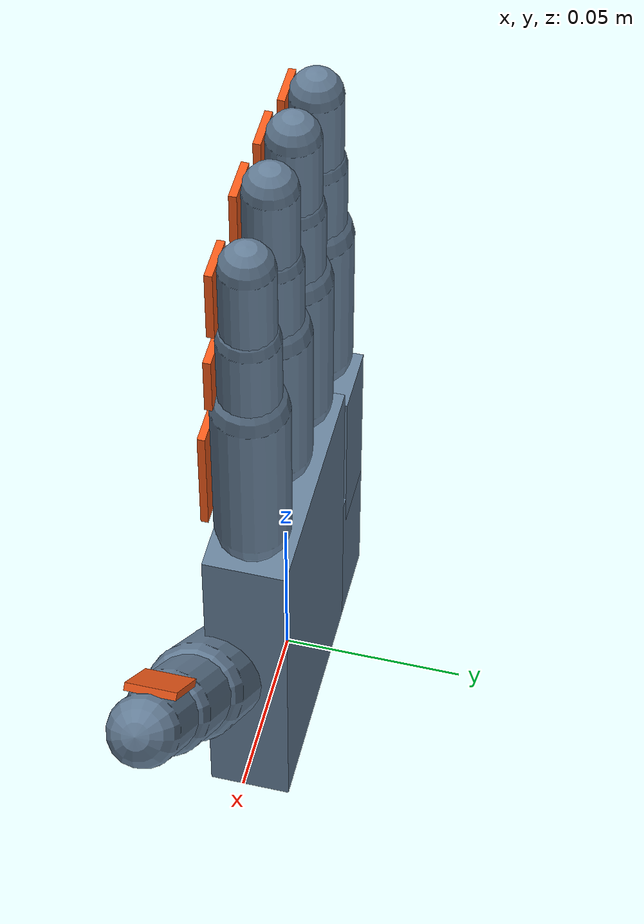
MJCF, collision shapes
<?xml version="1.0" encoding="utf-8"?>
<mujoco>
    <compiler angle="radian" coordinate="local" meshdir="../stls/hand" texturedir="../textures"></compiler>
    <option timestep="0.002" iterations="20" apirate="200">
        <flag warmstart="enable"></flag>
    </option>

    <include file="shared.xml"></include>

    <asset>
        <include file="shared_asset.xml"></include>
    </asset>

    <worldbody>
        <include file="robot_tactile.xml"></include>

        <light directional="true" ambient="0.2 0.2 0.2" diffuse="0.8 0.8 0.8" specular="0.3 0.3 0.3" castshadow="false" pos="0 1 4" dir="0 0 -1" name="light0"></light>
    </worldbody>
</mujoco>

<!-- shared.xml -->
<!-- See LICENSE.md for legal notices. LICENSE.md must be kept together with this file. -->
<mujoco>
    <size njmax="500" nconmax="100" nuser_jnt="1" nuser_site="1" nuser_tendon="1" nuser_sensor="1" nuser_actuator="16" nstack="600000"></size>

    <visual>
        <map fogstart="3" fogend="5" force="0.1"></map>
        <quality shadowsize="4096"></quality>
    </visual>

    <default>
        <default class="robot0:asset_class">
            <geom friction="1 0.005 0.001" condim="3" margin="0.0005" contype="1" conaffinity="1"></geom>
            <joint limited="true" damping="0.1" armature="0.001" margin="0.01" frictionloss="0.001"></joint>
            <site size="0.005" rgba="0.4 0.9 0.4 1"></site>
            <general ctrllimited="true" forcelimited="true"></general>
        </default>
        <default class="robot0:D_Touch">
            <site type="box" size="0.009 0.004 0.013" pos="0 -0.004 0.018" rgba="0.8 0.8 0.8 0.15" group="4"></site>
        </default>
        <default class="robot0:DC_Hand">
            <geom material="robot0:MatColl" contype="1" conaffinity="0" group="4"></geom>
        </default>
        <default class="robot0:D_TactilePad">
            <geom type="box" material="robot0:MatColl" friction="1 0.005 0.001" condim="4" margin="0.0002" contype="1" conaffinity="0" group="4" rgba="0.95 0.35 0.10 1"></geom>
        </default>
        <default class="robot0:D_Vizual">
            <geom material="robot0:MatViz" contype="0" conaffinity="0" group="1" type="mesh"></geom>
        </default>
        <default class="robot0:free">
            <joint type="free" damping="0" armature="0" limited="false"></joint>
        </default>
    </default>

    <contact>
        <pair geom1="robot0:C_ffdistal" geom2="robot0:C_thdistal" condim="1"></pair>
        <pair geom1="robot0:C_ffmiddle" geom2="robot0:C_thdistal" condim="1"></pair>
        <pair geom1="robot0:C_ffproximal" geom2="robot0:C_thdistal" condim="1"></pair>
        <pair geom1="robot0:C_mfproximal" geom2="robot0:C_thdistal" condim="1"></pair>
        <pair geom1="robot0:C_mfdistal" geom2="robot0:C_thdistal" condim="1"></pair>
        <pair geom1="robot0:C_rfdistal" geom2="robot0:C_thdistal" condim="1"></pair>
        <pair geom1="robot0:C_lfdistal" geom2="robot0:C_thdistal" condim="1"></pair>
        <pair geom1="robot0:C_palm0" geom2="robot0:C_thdistal" condim="1"></pair>
        <pair geom1="robot0:C_mfdistal" geom2="robot0:C_ffdistal" condim="1"></pair>
        <pair geom1="robot0:C_rfdistal" geom2="robot0:C_mfdistal" condim="1"></pair>
        <pair geom1="robot0:C_lfdistal" geom2="robot0:C_rfdistal" condim="1"></pair>
        <pair geom1="robot0:C_mfproximal" geom2="robot0:C_ffproximal" condim="1"></pair>
        <pair geom1="robot0:C_rfproximal" geom2="robot0:C_mfproximal" condim="1"></pair>
        <pair geom1="robot0:C_lfproximal" geom2="robot0:C_rfproximal" condim="1"></pair>
        <pair geom1="robot0:C_lfdistal" geom2="robot0:C_rfdistal" condim="1"></pair>
        <pair geom1="robot0:C_lfdistal" geom2="robot0:C_mfdistal" condim="1"></pair>
        <pair geom1="robot0:C_lfdistal" geom2="robot0:C_rfmiddle" condim="1"></pair>
        <pair geom1="robot0:C_lfmiddle" geom2="robot0:C_rfdistal" condim="1"></pair>
        <pair geom1="robot0:C_lfmiddle" geom2="robot0:C_rfmiddle" condim="1"></pair>
    </contact>

    <tendon>
        <fixed name="robot0:T_FFJ1c" limited="true" range="-0.001 0.001">
            <joint joint="robot0:FFJ0" coef="0.00705"></joint>
            <joint joint="robot0:FFJ1" coef="-0.00805"></joint>
        </fixed>
        <fixed name="robot0:T_MFJ1c" limited="true" range="-0.001 0.001">
            <joint joint="robot0:MFJ0" coef="0.00705"></joint>
            <joint joint="robot0:MFJ1" coef="-0.00805"></joint>
        </fixed>
        <fixed name="robot0:T_RFJ1c" limited="true" range="-0.001 0.001">
            <joint joint="robot0:RFJ0" coef="0.00705"></joint>
            <joint joint="robot0:RFJ1" coef="-0.00805"></joint>
        </fixed>
        <fixed name="robot0:T_LFJ1c" limited="true" range="-0.001 0.001">
            <joint joint="robot0:LFJ0" coef="0.00705"></joint>
            <joint joint="robot0:LFJ1" coef="-0.00805"></joint>
        </fixed>

    </tendon>

    <sensor>
        <jointpos name="robot0:Sjp_FFJ3" joint="robot0:FFJ3"></jointpos>
        <jointpos name="robot0:Sjp_FFJ2" joint="robot0:FFJ2"></jointpos>
        <jointpos name="robot0:Sjp_FFJ1" joint="robot0:FFJ1"></jointpos>
        <jointpos name="robot0:Sjp_FFJ0" joint="robot0:FFJ0"></jointpos>
        <jointpos name="robot0:Sjp_MFJ3" joint="robot0:MFJ3"></jointpos>
        <jointpos name="robot0:Sjp_MFJ2" joint="robot0:MFJ2"></jointpos>
        <jointpos name="robot0:Sjp_MFJ1" joint="robot0:MFJ1"></jointpos>
        <jointpos name="robot0:Sjp_MFJ0" joint="robot0:MFJ0"></jointpos>
        <jointpos name="robot0:Sjp_RFJ3" joint="robot0:RFJ3"></jointpos>
        <jointpos name="robot0:Sjp_RFJ2" joint="robot0:RFJ2"></jointpos>
        <jointpos name="robot0:Sjp_RFJ1" joint="robot0:RFJ1"></jointpos>
        <jointpos name="robot0:Sjp_RFJ0" joint="robot0:RFJ0"></jointpos>
        <jointpos name="robot0:Sjp_LFJ4" joint="robot0:LFJ4"></jointpos>
        <jointpos name="robot0:Sjp_LFJ3" joint="robot0:LFJ3"></jointpos>
        <jointpos name="robot0:Sjp_LFJ2" joint="robot0:LFJ2"></jointpos>
        <jointpos name="robot0:Sjp_LFJ1" joint="robot0:LFJ1"></jointpos>
        <jointpos name="robot0:Sjp_LFJ0" joint="robot0:LFJ0"></jointpos>
        <jointpos name="robot0:Sjp_THJ4" joint="robot0:THJ4"></jointpos>
        <jointpos name="robot0:Sjp_THJ3" joint="robot0:THJ3"></jointpos>
        <jointpos name="robot0:Sjp_THJ2" joint="robot0:THJ2"></jointpos>
        <jointpos name="robot0:Sjp_THJ1" joint="robot0:THJ1"></jointpos>
        <jointpos name="robot0:Sjp_THJ0" joint="robot0:THJ0"></jointpos>
        <touch name="robot0:ST_Tch_fftip" site="robot0:Tch_fftip"></touch>
        <touch name="robot0:ST_Tch_mftip" site="robot0:Tch_mftip"></touch>
        <touch name="robot0:ST_Tch_rftip" site="robot0:Tch_rftip"></touch>
        <touch name="robot0:ST_Tch_lftip" site="robot0:Tch_lftip"></touch>
        <touch name="robot0:ST_Tch_thtip" site="robot0:Tch_thtip"></touch>
    </sensor>

    <actuator>
        <position name="robot0:A_FFJ3" class="robot0:asset_class" user="2004" joint="robot0:FFJ3" ctrlrange="-0.349 0.349" kp="1" forcerange="-0.9 0.9"></position>
        <position name="robot0:A_FFJ2" class="robot0:asset_class" user="2002" joint="robot0:FFJ2" ctrlrange="0 1.571" kp="1" forcerange="-0.9 0.9"></position>
        <position name="robot0:A_FFJ1" class="robot0:asset_class" user="2000" joint="robot0:FFJ1" ctrlrange="0 1.571" kp="1" forcerange="-0.7245 0.7245"></position>
        <position name="robot0:A_MFJ3" class="robot0:asset_class" user="2010" joint="robot0:MFJ3" ctrlrange="-0.349 0.349" kp="1" forcerange="-0.9 0.9"></position>
        <position name="robot0:A_MFJ2" class="robot0:asset_class" user="2008" joint="robot0:MFJ2" ctrlrange="0 1.571" kp="1" forcerange="-0.9 0.9"></position>
        <position name="robot0:A_MFJ1" class="robot0:asset_class" user="2006" joint="robot0:MFJ1" ctrlrange="0 1.571" kp="1" forcerange="-0.7245 0.7245"></position>
        <position name="robot0:A_RFJ3" class="robot0:asset_class" user="2016" joint="robot0:RFJ3" ctrlrange="-0.349 0.349" kp="1" forcerange="-0.9 0.9"></position>
        <position name="robot0:A_RFJ2" class="robot0:asset_class" user="2014" joint="robot0:RFJ2" ctrlrange="0 1.571" kp="1" forcerange="-0.9 0.9"></position>
        <position name="robot0:A_RFJ1" class="robot0:asset_class" user="2012" joint="robot0:RFJ1" ctrlrange="0 1.571" kp="1" forcerange="-0.7245 0.7245"></position>
        <position name="robot0:A_LFJ4" class="robot0:asset_class" user="2024" joint="robot0:LFJ4" ctrlrange="0 0.785" kp="1" forcerange="-0.9 0.9"></position>
        <position name="robot0:A_LFJ3" class="robot0:asset_class" user="2022" joint="robot0:LFJ3" ctrlrange="-0.349 0.349" kp="1" forcerange="-0.9 0.9"></position>
        <position name="robot0:A_LFJ2" class="robot0:asset_class" user="2020" joint="robot0:LFJ2" ctrlrange="0 1.571" kp="1" forcerange="-0.9 0.9"></position>
        <position name="robot0:A_LFJ1" class="robot0:asset_class" user="2018" joint="robot0:LFJ1" ctrlrange="0 1.571" kp="1" forcerange="-0.7245 0.7245"></position>
        <position name="robot0:A_THJ4" class="robot0:asset_class" user="2034" joint="robot0:THJ4" ctrlrange="-1.047 1.047" kp="1" forcerange="-2.3722 2.3722"></position>
        <position name="robot0:A_THJ3" class="robot0:asset_class" user="2032" joint="robot0:THJ3" ctrlrange="0 1.222" kp="1" forcerange="-1.45 1.45"></position>
        <position name="robot0:A_THJ2" class="robot0:asset_class" user="2030" joint="robot0:THJ2" ctrlrange="-0.209 0.209" kp="1" forcerange="-0.99 0.99"></position>
        <position name="robot0:A_THJ1" class="robot0:asset_class" user="2028" joint="robot0:THJ1" ctrlrange="-0.524 0.524" kp="1" forcerange="-0.99 0.99"></position>
        <position name="robot0:A_THJ0" class="robot0:asset_class" user="2026" joint="robot0:THJ0" ctrlrange="-1.571 0" kp="1" forcerange="-0.81 0.81"></position>
    </actuator>
</mujoco>

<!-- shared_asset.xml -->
<!-- See LICENSE.md for legal notices. LICENSE.md must be kept together with this file. -->
<mujoco>
    <texture type="skybox" builtin="gradient" rgb1="0.44 0.85 0.56" rgb2="0.46 0.87 0.58" width="32" height="32"></texture>

    <texture name="robot0:texplane" type="2d" builtin="checker" rgb1="0.2 0.3 0.4" rgb2="0.1 0.15 0.2" width="512" height="512"></texture>
    <texture name="robot0:texgeom" type="cube" builtin="flat" mark="cross" width="127" height="127" rgb1="0.3 0.6 0.5" rgb2="0.3 0.6 0.5" markrgb="0 0 0" random="0.01"></texture>

    <material name="robot0:MatGnd" reflectance="0.5" texture="robot0:texplane" texrepeat="1 1" texuniform="true"></material>
    <material name="robot0:MatColl" specular="1" shininess="0.3" reflectance="0.5" rgba="0.4 0.5 0.6 1"></material>
    <material name="robot0:MatViz" specular="0.75" shininess="0.1" reflectance="0.5" rgba="0.93 0.93 0.93 1"></material>
    <material name="robot0:object" texture="robot0:texgeom" texuniform="false"></material>
    <material name="floor_mat" specular="0" shininess="0.5" reflectance="0" rgba="0.2 0.2 0.2 0"></material>

    <mesh name="robot0:forearm" file="forearm_electric.stl"></mesh>
    <mesh name="robot0:forearm_cvx" file="forearm_electric_cvx.stl"></mesh>
    <mesh name="robot0:wrist" scale="0.001 0.001 0.001" file="wrist.stl"></mesh>
    <mesh name="robot0:palm" scale="0.001 0.001 0.001" file="palm.stl"></mesh>
    <mesh name="robot0:knuckle" scale="0.001 0.001 0.001" file="knuckle.stl"></mesh>
    <mesh name="robot0:F3" scale="0.001 0.001 0.001" file="F3.stl"></mesh>
    <mesh name="robot0:F2" scale="0.001 0.001 0.001" file="F2.stl"></mesh>
    <mesh name="robot0:F1" scale="0.001 0.001 0.001" file="F1.stl"></mesh>
    <mesh name="robot0:lfmetacarpal" scale="0.001 0.001 0.001" file="lfmetacarpal.stl"></mesh>
    <mesh name="robot0:TH3_z" scale="0.001 0.001 0.001" file="TH3_z.stl"></mesh>
    <mesh name="robot0:TH2_z" scale="0.001 0.001 0.001" file="TH2_z.stl"></mesh>
    <mesh name="robot0:TH1_z" scale="0.001 0.001 0.001" file="TH1_z.stl"></mesh>
</mujoco>

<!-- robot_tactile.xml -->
<!-- See LICENSE.md for legal notices. LICENSE.md must be kept together with this file. -->
<mujoco>
    <body name="robot0:hand mount" pos="0 0 0" euler="0 0 0">
        <inertial mass="0.1" pos="0 0 0" diaginertia="0.001 0.001 0.001"></inertial>
        <body childclass="robot0:asset_class" name="robot0:palm" pos="0 0 0" euler="0 0 0">
            <inertial pos="0.006 0 0.036" quat="0.716 0.044 0.075 0.693" mass="4" diaginertia="0.01 0.01 0.0075"></inertial>
            <geom class="robot0:D_Vizual" name="robot0:V_palm" mesh="robot0:palm"></geom>
            <geom class="robot0:DC_Hand" name="robot0:C_palm0" type="box" pos="0.011 0 0.038" size="0.032 0.0111 0.049" rgba="0.4 0.5 0.6 0.1"></geom>
            <geom class="robot0:DC_Hand" name="robot0:C_palm1" type="box" pos="-0.032 0 0.014" size="0.011 0.0111 0.025" rgba="0.4 0.5 0.6 0.1"></geom>
            <!-- Pad centres overlap parent surfaces by 0.5 mm and protrude 1.5 mm. -->
            <body name="robot0:palm_sensor" pos="0.008 -0.0116 0.045">
                <inertial mass="0.001" pos="0 0 0" diaginertia="1e-7 1e-7 1e-7"></inertial>
                <geom class="robot0:D_TactilePad" name="robot0:C_palm_sensor" size="0.022 0.001 0.030"></geom>
            </body>
            <body name="robot0:ffknuckle" pos="0.033 0 0.095">
                <inertial pos="0 0 0" quat="0.52 0.854 0.006 -0.003" mass="0.008" diaginertia="1e-05 1e-05 1e-05"></inertial>
                <joint name="robot0:FFJ3" type="hinge" pos="0 0 0" axis="0 1 0" range="-0.349 0.349" user="1103"></joint>
                <geom class="robot0:D_Vizual" name="robot0:V_ffknuckle" mesh="robot0:knuckle"></geom>
                <body name="robot0:ffproximal" pos="0 0 0">
                    <inertial pos="0 0 0.023" quat="0.707 -0.004 0.004 0.707" mass="0.014" diaginertia="1e-05 1e-05 1e-05"></inertial>
                    <joint name="robot0:FFJ2" type="hinge" pos="0 0 0" axis="1 0 0" range="0 1.571" user="1102"></joint>
                    <geom class="robot0:D_Vizual" name="robot0:V_ffproximal" mesh="robot0:F3"></geom>
                    <geom class="robot0:DC_Hand" name="robot0:C_ffproximal" type="capsule" pos="0 0 0.0225" size="0.01 0.0225"></geom>
                    <body name="robot0:ffproximal_sensor" pos="0 -0.0105 0.0225">
                        <inertial mass="0.001" pos="0 0 0" diaginertia="1e-7 1e-7 1e-7"></inertial>
                        <geom class="robot0:D_TactilePad" name="robot0:C_ffproximal_sensor" size="0.0075 0.001 0.016"></geom>
                    </body>
                    <body name="robot0:ffmiddle" pos="0 0 0.045">
                        <inertial pos="0 0 0.011" quat="0.707 0 0 0.707" mass="0.012" diaginertia="1e-05 1e-05 1e-05"></inertial>
                        <joint name="robot0:FFJ1" type="hinge" pos="0 0 0" axis="1 0 0" range="0 1.571" user="1101"></joint>
                        <geom class="robot0:D_Vizual" name="robot0:V_ffmiddle" mesh="robot0:F2"></geom>
                        <geom class="robot0:DC_Hand" name="robot0:C_ffmiddle" type="capsule" pos="0 0 0.0125" size="0.00805 0.0125"></geom>
                        <body name="robot0:ffmiddle_sensor" pos="0 -0.00855 0.0125">
                            <inertial mass="0.001" pos="0 0 0" diaginertia="1e-7 1e-7 1e-7"></inertial>
                            <geom class="robot0:D_TactilePad" name="robot0:C_ffmiddle_sensor" size="0.0065 0.001 0.0085"></geom>
                        </body>
                        <body name="robot0:ffdistal" pos="0 0 0.025">
                            <inertial pos="0 0 0.015" quat="0.707 -0.003 0.003 0.707" mass="0.01" diaginertia="1e-05 1e-05 1e-05"></inertial>
                            <joint name="robot0:FFJ0" type="hinge" pos="0 0 0" axis="1 0 0" range="0 1.571" user="1100"></joint>
                            <geom class="robot0:D_Vizual" name="robot0:V_ffdistal" pos="0 0 0.001" mesh="robot0:F1"></geom>
                            <geom class="robot0:DC_Hand" name="robot0:C_ffdistal" type="capsule" pos="0 0 0.012" size="0.00705 0.012" condim="4"></geom>
                            <site name="robot0:S_fftip" pos="0 0 0.026" group="3"></site>
                            <site class="robot0:D_Touch" name="robot0:Tch_fftip"></site>
                            <body name="robot0:ffdistal_sensor" pos="0 -0.00755 0.015">
                                <inertial mass="0.001" pos="0 0 0" diaginertia="1e-7 1e-7 1e-7"></inertial>
                                <geom class="robot0:D_TactilePad" name="robot0:C_ffdistal_sensor" size="0.0058 0.001 0.0105"></geom>
                            </body>
                        </body>
                    </body>
                </body>
            </body>
            <body name="robot0:mfknuckle" pos="0.011 0 0.099">
                <inertial pos="0 0 0" quat="0.52 0.854 0.006 -0.003" mass="0.008" diaginertia="1e-05 1e-05 1e-05"></inertial>
                <joint name="robot0:MFJ3" type="hinge" pos="0 0 0" axis="0 1 0" range="-0.349 0.349" user="1107"></joint>
                <geom class="robot0:D_Vizual" name="robot0:V_mfknuckle" mesh="robot0:knuckle"></geom>
                <body name="robot0:mfproximal" pos="0 0 0">
                    <inertial pos="0 0 0.023" quat="0.707 -0.004 0.004 0.707" mass="0.014" diaginertia="1e-05 1e-05 1e-05"></inertial>
                    <joint name="robot0:MFJ2" type="hinge" pos="0 0 0" axis="1 0 0" range="0 1.571" user="1106"></joint>
                    <geom class="robot0:D_Vizual" name="robot0:V_mfproximal" mesh="robot0:F3"></geom>
                    <geom class="robot0:DC_Hand" name="robot0:C_mfproximal" type="capsule" pos="0 0 0.0225" size="0.01 0.0225"></geom>
                    <body name="robot0:mfproximal_sensor" pos="0 -0.0105 0.0225">
                        <inertial mass="0.001" pos="0 0 0" diaginertia="1e-7 1e-7 1e-7"></inertial>
                        <geom class="robot0:D_TactilePad" name="robot0:C_mfproximal_sensor" size="0.0075 0.001 0.016"></geom>
                    </body>
                    <body name="robot0:mfmiddle" pos="0 0 0.045">
                        <inertial pos="0 0 0.012" quat="0.707 0 0 0.707" mass="0.012" diaginertia="1e-05 1e-05 1e-05"></inertial>
                        <joint name="robot0:MFJ1" type="hinge" pos="0 0 0" axis="1 0 0" range="0 1.571" user="1105"></joint>
                        <geom class="robot0:D_Vizual" name="robot0:V_mfmiddle" mesh="robot0:F2"></geom>
                        <geom class="robot0:DC_Hand" name="robot0:C_mfmiddle" type="capsule" pos="0 0 0.0125" size="0.00805 0.0125"></geom>
                        <body name="robot0:mfmiddle_sensor" pos="0 -0.00855 0.0125">
                            <inertial mass="0.001" pos="0 0 0" diaginertia="1e-7 1e-7 1e-7"></inertial>
                            <geom class="robot0:D_TactilePad" name="robot0:C_mfmiddle_sensor" size="0.0065 0.001 0.0085"></geom>
                        </body>
                        <body name="robot0:mfdistal" pos="0 0 0.025">
                            <inertial pos="0 0 0.015" quat="0.707 -0.003 0.003 0.707" mass="0.01" diaginertia="1e-05 1e-05 1e-05"></inertial>
                            <joint name="robot0:MFJ0" type="hinge" pos="0 0 0" axis="1 0 0" range="0 1.571" user="1104"></joint>
                            <geom class="robot0:D_Vizual" name="robot0:V_mfdistal" mesh="robot0:F1"></geom>
                            <geom class="robot0:DC_Hand" name="robot0:C_mfdistal" type="capsule" pos="0 0 0.012" size="0.00705 0.012" condim="4"></geom>
                            <site name="robot0:S_mftip" pos="0 0 0.026" group="3"></site>
                            <site class="robot0:D_Touch" name="robot0:Tch_mftip"></site>
                            <body name="robot0:mfdistal_sensor" pos="0 -0.00755 0.015">
                                <inertial mass="0.001" pos="0 0 0" diaginertia="1e-7 1e-7 1e-7"></inertial>
                                <geom class="robot0:D_TactilePad" name="robot0:C_mfdistal_sensor" size="0.0058 0.001 0.0105"></geom>
                            </body>
                        </body>
                    </body>
                </body>
            </body>
            <body name="robot0:rfknuckle" pos="-0.011 0 0.095">
                <inertial pos="0 0 0" quat="0.52 0.854 0.006 -0.003" mass="0.008" diaginertia="1e-05 1e-05 1e-05"></inertial>
                <joint name="robot0:RFJ3" type="hinge" pos="0 0 0" axis="0 1 0" range="-0.349 0.349" user="1111"></joint>
                <geom class="robot0:D_Vizual" name="robot0:V_rfknuckle" mesh="robot0:knuckle"></geom>
                <body name="robot0:rfproximal" pos="0 0 0">
                    <inertial pos="0 0 0.023" quat="0.707 -0.004 0.004 0.707" mass="0.014" diaginertia="1e-05 1e-05 1e-05"></inertial>
                    <joint name="robot0:RFJ2" type="hinge" pos="0 0 0" axis="1 0 0" range="0 1.571" user="1110"></joint>
                    <geom class="robot0:D_Vizual" name="robot0:V_rfproximal" mesh="robot0:F3"></geom>
                    <geom class="robot0:DC_Hand" name="robot0:C_rfproximal" type="capsule" pos="0 0 0.0225" size="0.01 0.0225"></geom>
                    <body name="robot0:rfproximal_sensor" pos="0 -0.0105 0.0225">
                        <inertial mass="0.001" pos="0 0 0" diaginertia="1e-7 1e-7 1e-7"></inertial>
                        <geom class="robot0:D_TactilePad" name="robot0:C_rfproximal_sensor" size="0.0075 0.001 0.016"></geom>
                    </body>
                    <body name="robot0:rfmiddle" pos="0 0 0.045">
                        <inertial pos="0 0 0.012" quat="0.707 0 0 0.707" mass="0.012" diaginertia="1e-05 1e-05 1e-05"></inertial>
                        <joint name="robot0:RFJ1" type="hinge" pos="0 0 0" axis="1 0 0" range="0 1.571" user="1109"></joint>
                        <geom class="robot0:D_Vizual" name="robot0:V_rfmiddle" mesh="robot0:F2"></geom>
                        <geom class="robot0:DC_Hand" name="robot0:C_rfmiddle" type="capsule" pos="0 0 0.0125" size="0.00805 0.0125"></geom>
                        <body name="robot0:rfmiddle_sensor" pos="0 -0.00855 0.0125">
                            <inertial mass="0.001" pos="0 0 0" diaginertia="1e-7 1e-7 1e-7"></inertial>
                            <geom class="robot0:D_TactilePad" name="robot0:C_rfmiddle_sensor" size="0.0065 0.001 0.0085"></geom>
                        </body>
                        <body name="robot0:rfdistal" pos="0 0 0.025">
                            <inertial pos="0 0 0.015" quat="0.707 -0.003 0.003 0.707" mass="0.01" diaginertia="1e-05 1e-05 1e-05"></inertial>
                            <joint name="robot0:RFJ0" type="hinge" pos="0 0 0" axis="1 0 0" range="0 1.571" user="1108"></joint>
                            <geom class="robot0:D_Vizual" name="robot0:V_rfdistal" mesh="robot0:F1" pos="0 0 0.001"></geom>
                            <geom class="robot0:DC_Hand" name="robot0:C_rfdistal" type="capsule" pos="0 0 0.012" size="0.00705 0.012" condim="4"></geom>
                            <site name="robot0:S_rftip" pos="0 0 0.026" group="3"></site>
                            <site class="robot0:D_Touch" name="robot0:Tch_rftip"></site>
                            <body name="robot0:rfdistal_sensor" pos="0 -0.00755 0.015">
                                <inertial mass="0.001" pos="0 0 0" diaginertia="1e-7 1e-7 1e-7"></inertial>
                                <geom class="robot0:D_TactilePad" name="robot0:C_rfdistal_sensor" size="0.0058 0.001 0.0105"></geom>
                            </body>
                        </body>
                    </body>
                </body>
            </body>
            <body name="robot0:lfmetacarpal" pos="-0.017 0 0.044">
                <inertial pos="-0.014 0.001 0.014" quat="0.709 -0.092 -0.063 0.696" mass="0.075" diaginertia="1e-05 1e-05 1e-05"></inertial>
                <joint name="robot0:LFJ4" type="hinge" pos="0 0 0" axis="0.571 0 0.821" range="0 0.785" user="1116"></joint>
                <geom class="robot0:D_Vizual" name="robot0:V_lfmetacarpal" pos="-0.016 0 -0.023" mesh="robot0:lfmetacarpal"></geom>
                <geom class="robot0:DC_Hand" name="robot0:C_lfmetacarpal" type="box" pos="-0.0165 0 0.01" size="0.0095 0.0111 0.025" rgba="0.4 0.5 0.6 0.2"></geom>
                <body name="robot0:lfknuckle" pos="-0.017 0 0.044">
                    <inertial pos="0 0 0" quat="0.52 0.854 0.006 -0.003" mass="0.008" diaginertia="1e-05 1e-05 1e-05"></inertial>
                    <joint name="robot0:LFJ3" type="hinge" pos="0 0 0" axis="0 1 0" range="-0.349 0.349" user="1115"></joint>
                    <geom class="robot0:D_Vizual" name="robot0:V_lfknuckle" mesh="robot0:knuckle"></geom>
                    <body name="robot0:lfproximal" pos="0 0 0">
                        <inertial pos="0 0 0.023" quat="0.707 -0.004 0.004 0.707" mass="0.014" diaginertia="1e-05 1e-05 1e-05"></inertial>
                        <joint name="robot0:LFJ2" type="hinge" pos="0 0 0" axis="1 0 0" range="0 1.571" user="1114"></joint>
                        <geom class="robot0:D_Vizual" name="robot0:V_lfproximal" mesh="robot0:F3"></geom>
                        <geom class="robot0:DC_Hand" name="robot0:C_lfproximal" type="capsule" pos="0 0 0.0225" size="0.01 0.0225"></geom>
                        <body name="robot0:lfproximal_sensor" pos="0 -0.0105 0.0225">
                            <inertial mass="0.001" pos="0 0 0" diaginertia="1e-7 1e-7 1e-7"></inertial>
                            <geom class="robot0:D_TactilePad" name="robot0:C_lfproximal_sensor" size="0.0075 0.001 0.016"></geom>
                        </body>
                        <body name="robot0:lfmiddle" pos="0 0 0.045">
                            <inertial pos="0 0 0.012" quat="0.707 0 0 0.707" mass="0.012" diaginertia="1e-05 1e-05 1e-05"></inertial>
                            <joint name="robot0:LFJ1" type="hinge" pos="0 0 0" axis="1 0 0" range="0 1.571" user="1113"></joint>
                            <geom class="robot0:D_Vizual" name="robot0:V_lfmiddle" mesh="robot0:F2"></geom>
                            <geom class="robot0:DC_Hand" name="robot0:C_lfmiddle" type="capsule" pos="0 0 0.0125" size="0.00805 0.0125"></geom>
                            <body name="robot0:lfmiddle_sensor" pos="0 -0.00855 0.0125">
                                <inertial mass="0.001" pos="0 0 0" diaginertia="1e-7 1e-7 1e-7"></inertial>
                                <geom class="robot0:D_TactilePad" name="robot0:C_lfmiddle_sensor" size="0.0065 0.001 0.0085"></geom>
                            </body>
                            <body name="robot0:lfdistal" pos="0 0 0.025">
                                <inertial pos="0 0 0.015" quat="0.707 -0.003 0.003 0.707" mass="0.01" diaginertia="1e-05 1e-05 1e-05"></inertial>
                                <joint name="robot0:LFJ0" type="hinge" pos="0 0 0" axis="1 0 0" range="0 1.571" user="1112"></joint>
                                <geom class="robot0:D_Vizual" name="robot0:V_lfdistal" mesh="robot0:F1" pos="0 0 0.001"></geom>
                                <geom class="robot0:DC_Hand" name="robot0:C_lfdistal" type="capsule" pos="0 0 0.012" size="0.00705 0.012" condim="4"></geom>
                                <site name="robot0:S_lftip" pos="0 0 0.026" group="3"></site>
                                <site class="robot0:D_Touch" name="robot0:Tch_lftip"></site>
                                <body name="robot0:lfdistal_sensor" pos="0 -0.00755 0.015">
                                    <inertial mass="0.001" pos="0 0 0" diaginertia="1e-7 1e-7 1e-7"></inertial>
                                    <geom class="robot0:D_TactilePad" name="robot0:C_lfdistal_sensor" size="0.0058 0.001 0.0105"></geom>
                                </body>
                            </body>
                        </body>
                    </body>
                </body>
            </body>
            <body name="robot0:thbase" pos="0.034 -0.009 0.029" axisangle="0 1 0 0.785">
                <inertial pos="0 0 0" mass="0.01" diaginertia="1e-05 1e-05 1e-05"></inertial>
                <joint name="robot0:THJ4" type="hinge" pos="0 0 0" axis="0 0 -1" range="-1.047 1.047" user="1121"></joint>
                <geom name="robot0:V_thbase" type="box" group="1" pos="0 0 0" size="0.001 0.001 0.001"></geom>
                <body name="robot0:thproximal" pos="0 0 0">
                    <inertial pos="0 0 0.017" quat="0.982 0 0.001 0.191" mass="0.016" diaginertia="1e-05 1e-05 1e-05"></inertial>
                    <joint name="robot0:THJ3" type="hinge" pos="0 0 0" axis="1 0 0" range="0 1.222" user="1120"></joint>
                    <geom class="robot0:D_Vizual" name="robot0:V_thproximal" mesh="robot0:TH3_z"></geom>
                    <geom class="robot0:DC_Hand" name="robot0:C_thproximal" type="capsule" pos="0 0 0.019" size="0.013 0.019" rgba="0.4 0.5 0.6 0.1"></geom>
                    <body name="robot0:thhub" pos="0 0 0.038">
                        <inertial pos="0 0 0" mass="0.002" diaginertia="1e-05 1e-05 1e-05"></inertial>
                        <joint name="robot0:THJ2" type="hinge" pos="0 0 0" axis="1 0 0" range="-0.209 0.209" user="1119"></joint>
                        <geom name="robot0:V_thhub" type="box" group="1" pos="0 0 0" size="0.001 0.001 0.001"></geom>
                        <body name="robot0:thmiddle" pos="0 0 0">
                            <inertial pos="0 0 0.016" quat="1 -0.001 -0.007 0.003" mass="0.016" diaginertia="1e-05 1e-05 1e-05"></inertial>
                            <joint name="robot0:THJ1" type="hinge" pos="0 0 0" axis="0 1 0" range="-0.524 0.524" user="1118"></joint>
                            <geom class="robot0:D_Vizual" name="robot0:V_thmiddle" mesh="robot0:TH2_z"></geom>
                            <geom class="robot0:DC_Hand" name="robot0:C_thmiddle" type="capsule" pos="0 0 0.016" size="0.011 0.016"></geom>
                            <body name="robot0:thdistal" pos="0 0 0.032">
                                <inertial pos="0 0 0.016" quat="0.999 -0.005 -0.047 0.005" mass="0.016" diaginertia="1e-05 1e-05 1e-05"></inertial>
                                <joint name="robot0:THJ0" type="hinge" pos="0 0 0" axis="0 1 0" range="-1.571 0" user="1117"></joint>
                                <geom class="robot0:D_Vizual" name="robot0:V_thdistal" mesh="robot0:TH1_z"></geom>
                                <geom class="robot0:DC_Hand" name="robot0:C_thdistal" type="capsule" pos="0 0 0.013" size="0.00918 0.013" condim="4"></geom>
                                <site name="robot0:S_thtip" pos="0 0 0.0275" group="3"></site>
                                <site class="robot0:D_Touch" name="robot0:Tch_thtip" size="0.005 0.011 0.016" pos="-0.005 0 0.02"></site>
                                <body name="robot0:thdistal_sensor" pos="-0.00968 0 0.015">
                                    <inertial mass="0.001" pos="0 0 0" diaginertia="1e-7 1e-7 1e-7"></inertial>
                                    <geom class="robot0:D_TactilePad" name="robot0:C_thdistal_sensor" size="0.001 0.0065 0.011"></geom>
                                </body>
                            </body>
                        </body>
                    </body>
                </body>
            </body>
        </body>
    </body>
</mujoco>
